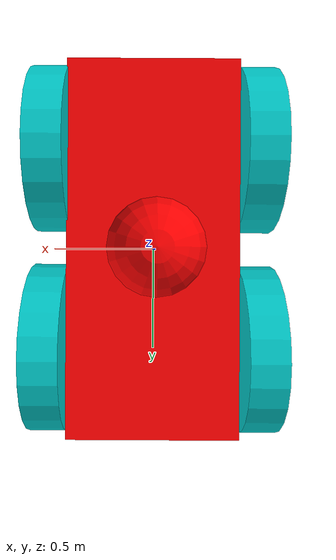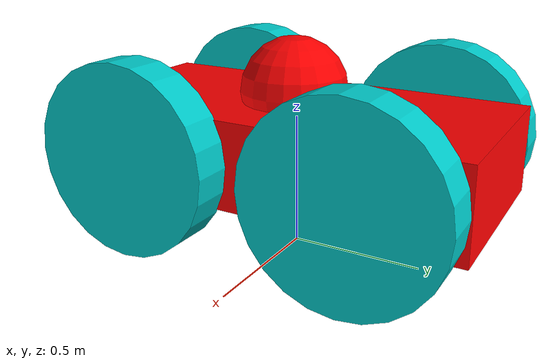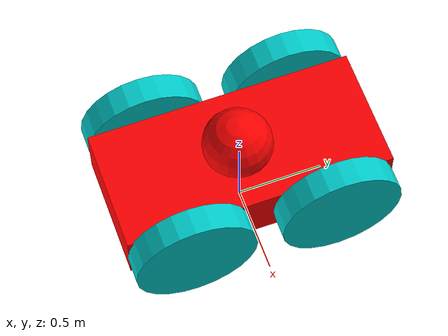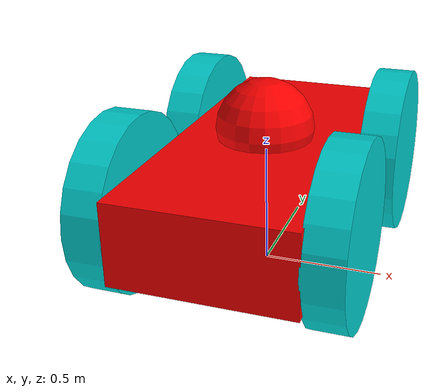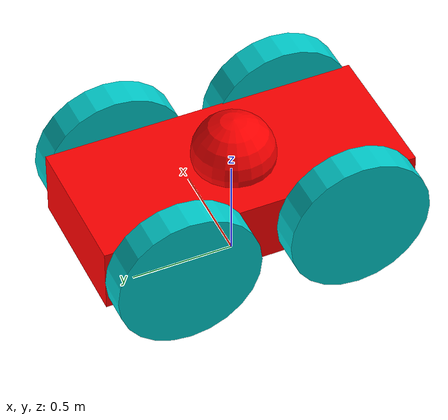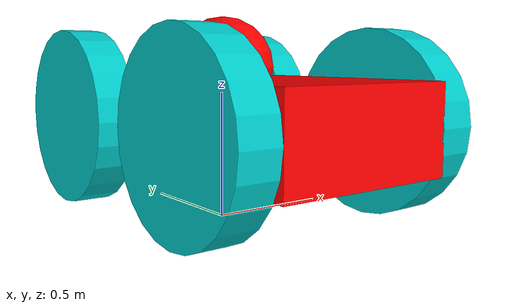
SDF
<?xml version='1.0'?>
<sdf version='1.6'>
  <model name='4wheeler'>
    <link name='link_0'>
      <inertial>
        <mass>1.35085</mass>
        <inertia>
          <ixx>0.277852</ixx>
          <ixy>0</ixy>
          <ixz>0</ixz>
          <iyy>0.0669791</iyy>
          <iyz>0</iyz>
          <izz>0.321192</izz>
        </inertia>
        <pose frame=''>0 0 0 0 -0 0</pose>
      </inertial>
      <pose frame=''>0.011609 -0.00021 0.4 0 -0 0</pose>
      <gravity>1</gravity>
      <self_collide>0</self_collide>
      <kinematic>0</kinematic>
      <enable_wind>0</enable_wind>
      <visual name='visual'>
        <pose frame=''>0 0 0 0 -0 0</pose>
        <geometry>
          <box>
            <size>0.7 1.53729 0.324029</size>
          </box>
        </geometry>
        <material>
          <lighting>1</lighting>
          <script>
            <uri>file://media/materials/scripts/gazebo.material</uri>
            <name>Gazebo/Grey</name>
          </script>
          <shader type='pixel'>
            <normal_map>__default__</normal_map>
          </shader>
          <ambient>1 0 0 1</ambient>
          <diffuse>0.7 0.7 0.7 1</diffuse>
          <specular>0.01 0.01 0.01 1</specular>
          <emissive>0 0 0 1</emissive>
        </material>
        <transparency>0</transparency>
        <cast_shadows>1</cast_shadows>
      </visual>
      <collision name='collision'>
        <laser_retro>0</laser_retro>
        <max_contacts>10</max_contacts>
        <pose frame=''>0 0 0 0 -0 0</pose>
        <geometry>
          <box>
            <size>0.7 1.53729 0.324029</size>
          </box>
        </geometry>
        <surface>
          <friction>
            <ode>
              <mu>1</mu>
              <mu2>1</mu2>
              <fdir1>0 0 0</fdir1>
              <slip1>0</slip1>
              <slip2>0</slip2>
            </ode>
            <torsional>
              <coefficient>1</coefficient>
              <patch_radius>0</patch_radius>
              <surface_radius>0</surface_radius>
              <use_patch_radius>1</use_patch_radius>
              <ode>
                <slip>0</slip>
              </ode>
            </torsional>
          </friction>
          <bounce>
            <restitution_coefficient>0</restitution_coefficient>
            <threshold>1e+06</threshold>
          </bounce>
          <contact>
            <collide_without_contact>0</collide_without_contact>
            <collide_without_contact_bitmask>1</collide_without_contact_bitmask>
            <collide_bitmask>1</collide_bitmask>
            <ode>
              <soft_cfm>0</soft_cfm>
              <soft_erp>0.2</soft_erp>
              <kp>1e+13</kp>
              <kd>1</kd>
              <max_vel>0.01</max_vel>
              <min_depth>0</min_depth>
            </ode>
            <bullet>
              <split_impulse>1</split_impulse>
              <split_impulse_penetration_threshold>-0.01</split_impulse_penetration_threshold>
              <soft_cfm>0</soft_cfm>
              <soft_erp>0.2</soft_erp>
              <kp>1e+13</kp>
              <kd>1</kd>
            </bullet>
          </contact>
        </surface>
      </collision>
    </link>
    <link name='link_1_clone'>
      <inertial>
        <mass>1</mass>
        <inertia>
          <ixx>0.145833</ixx>
          <ixy>0</ixy>
          <ixz>0</ixz>
          <iyy>0.145833</iyy>
          <iyz>0</iyz>
          <izz>0.125</izz>
        </inertia>
        <pose frame=''>0 0 0 0 -0 0</pose>
      </inertial>
      <pose frame=''>0.44037 0.416058 0.4 1.5707 0 1.5707</pose>
      <gravity>1</gravity>
      <self_collide>0</self_collide>
      <kinematic>0</kinematic>
      <enable_wind>0</enable_wind>
      <visual name='visual'>
        <pose frame=''>0 0 0 0 -0 0</pose>
        <geometry>
          <cylinder>
            <radius>0.35</radius>
            <length>0.15</length>
          </cylinder>
        </geometry>
        <material>
          <lighting>1</lighting>
          <script>
            <uri>file://media/materials/scripts/gazebo.material</uri>
            <name>Gazebo/Grey</name>
          </script>
          <shader type='pixel'>
            <normal_map>__default__</normal_map>
          </shader>
          <ambient>0 0.8 0.8 1</ambient>
          <diffuse>0.7 0.7 0.7 1</diffuse>
          <specular>0.01 0.01 0.01 1</specular>
          <emissive>0 0 0 1</emissive>
        </material>
        <transparency>0</transparency>
        <cast_shadows>1</cast_shadows>
      </visual>
      <collision name='collision'>
        <laser_retro>0</laser_retro>
        <max_contacts>10</max_contacts>
        <pose frame=''>0 0 0 0 -0 0</pose>
        <geometry>
          <cylinder>
            <radius>0.35</radius>
            <length>0.15</length>
          </cylinder>
        </geometry>
        <surface>
          <friction>
            <ode>
              <mu>1</mu>
              <mu2>1</mu2>
              <fdir1>0 0 0</fdir1>
              <slip1>0</slip1>
              <slip2>0</slip2>
            </ode>
            <torsional>
              <coefficient>1</coefficient>
              <patch_radius>0</patch_radius>
              <surface_radius>0</surface_radius>
              <use_patch_radius>1</use_patch_radius>
              <ode>
                <slip>0</slip>
              </ode>
            </torsional>
          </friction>
          <bounce>
            <restitution_coefficient>0</restitution_coefficient>
            <threshold>1e+06</threshold>
          </bounce>
          <contact>
            <collide_without_contact>0</collide_without_contact>
            <collide_without_contact_bitmask>1</collide_without_contact_bitmask>
            <collide_bitmask>1</collide_bitmask>
            <ode>
              <soft_cfm>0</soft_cfm>
              <soft_erp>0.2</soft_erp>
              <kp>1e+13</kp>
              <kd>1</kd>
              <max_vel>0.01</max_vel>
              <min_depth>0</min_depth>
            </ode>
            <bullet>
              <split_impulse>1</split_impulse>
              <split_impulse_penetration_threshold>-0.01</split_impulse_penetration_threshold>
              <soft_cfm>0</soft_cfm>
              <soft_erp>0.2</soft_erp>
              <kp>1e+13</kp>
              <kd>1</kd>
            </bullet>
          </contact>
        </surface>
      </collision>
    </link>
    <link name='link_1_clone_clone'>
      <inertial>
        <mass>1</mass>
        <inertia>
          <ixx>0.145833</ixx>
          <ixy>0</ixy>
          <ixz>0</ixz>
          <iyy>0.145833</iyy>
          <iyz>0</iyz>
          <izz>0.125</izz>
        </inertia>
        <pose frame=''>0 0 0 0 -0 0</pose>
      </inertial>
      <pose frame=''>0.431165 -0.424592 0.4 1.5707 0 1.5707</pose>
      <gravity>1</gravity>
      <self_collide>0</self_collide>
      <kinematic>0</kinematic>
      <enable_wind>0</enable_wind>
      <visual name='visual'>
        <pose frame=''>0 0 0 0 -0 0</pose>
        <geometry>
          <cylinder>
            <radius>0.35</radius>
            <length>0.15</length>
          </cylinder>
        </geometry>
        <material>
          <lighting>1</lighting>
          <script>
            <uri>file://media/materials/scripts/gazebo.material</uri>
            <name>Gazebo/Grey</name>
          </script>
          <shader type='pixel'>
            <normal_map>__default__</normal_map>
          </shader>
          <ambient>0 0.8 0.8 1</ambient>
          <diffuse>0.7 0.7 0.7 1</diffuse>
          <specular>0.01 0.01 0.01 1</specular>
          <emissive>0 0 0 1</emissive>
        </material>
        <transparency>0</transparency>
        <cast_shadows>1</cast_shadows>
      </visual>
      <collision name='collision'>
        <laser_retro>0</laser_retro>
        <max_contacts>10</max_contacts>
        <pose frame=''>0 0 0 0 -0 0</pose>
        <geometry>
          <cylinder>
            <radius>0.35</radius>
            <length>0.15</length>
          </cylinder>
        </geometry>
        <surface>
          <friction>
            <ode>
              <mu>1</mu>
              <mu2>1</mu2>
              <fdir1>0 0 0</fdir1>
              <slip1>0</slip1>
              <slip2>0</slip2>
            </ode>
            <torsional>
              <coefficient>1</coefficient>
              <patch_radius>0</patch_radius>
              <surface_radius>0</surface_radius>
              <use_patch_radius>1</use_patch_radius>
              <ode>
                <slip>0</slip>
              </ode>
            </torsional>
          </friction>
          <bounce>
            <restitution_coefficient>0</restitution_coefficient>
            <threshold>1e+06</threshold>
          </bounce>
          <contact>
            <collide_without_contact>0</collide_without_contact>
            <collide_without_contact_bitmask>1</collide_without_contact_bitmask>
            <collide_bitmask>1</collide_bitmask>
            <ode>
              <soft_cfm>0</soft_cfm>
              <soft_erp>0.2</soft_erp>
              <kp>1e+13</kp>
              <kd>1</kd>
              <max_vel>0.01</max_vel>
              <min_depth>0</min_depth>
            </ode>
            <bullet>
              <split_impulse>1</split_impulse>
              <split_impulse_penetration_threshold>-0.01</split_impulse_penetration_threshold>
              <soft_cfm>0</soft_cfm>
              <soft_erp>0.2</soft_erp>
              <kp>1e+13</kp>
              <kd>1</kd>
            </bullet>
          </contact>
        </surface>
      </collision>
    </link>
    <link name='link_1_clone_clone_0'>
      <inertial>
        <mass>1</mass>
        <inertia>
          <ixx>0.145833</ixx>
          <ixy>0</ixy>
          <ixz>0</ixz>
          <iyy>0.145833</iyy>
          <iyz>0</iyz>
          <izz>0.125</izz>
        </inertia>
        <pose frame=''>0 0 0 0 -0 0</pose>
      </inertial>
      <pose frame=''>-0.421453 0.42237 0.4 1.5707 0 1.5707</pose>
      <gravity>1</gravity>
      <self_collide>0</self_collide>
      <kinematic>0</kinematic>
      <enable_wind>0</enable_wind>
      <visual name='visual'>
        <pose frame=''>0 0 0 0 -0 0</pose>
        <geometry>
          <cylinder>
            <radius>0.35</radius>
            <length>0.15</length>
          </cylinder>
        </geometry>
        <material>
          <lighting>1</lighting>
          <script>
            <uri>file://media/materials/scripts/gazebo.material</uri>
            <name>Gazebo/Grey</name>
          </script>
          <shader type='pixel'>
            <normal_map>__default__</normal_map>
          </shader>
          <ambient>0 0.8 0.8 1</ambient>
          <diffuse>0.7 0.7 0.7 1</diffuse>
          <specular>0.01 0.01 0.01 1</specular>
          <emissive>0 0 0 1</emissive>
        </material>
        <transparency>0</transparency>
        <cast_shadows>1</cast_shadows>
      </visual>
      <collision name='collision'>
        <laser_retro>0</laser_retro>
        <max_contacts>10</max_contacts>
        <pose frame=''>0 0 0 0 -0 0</pose>
        <geometry>
          <cylinder>
            <radius>0.35</radius>
            <length>0.15</length>
          </cylinder>
        </geometry>
        <surface>
          <friction>
            <ode>
              <mu>1</mu>
              <mu2>1</mu2>
              <fdir1>0 0 0</fdir1>
              <slip1>0</slip1>
              <slip2>0</slip2>
            </ode>
            <torsional>
              <coefficient>1</coefficient>
              <patch_radius>0</patch_radius>
              <surface_radius>0</surface_radius>
              <use_patch_radius>1</use_patch_radius>
              <ode>
                <slip>0</slip>
              </ode>
            </torsional>
          </friction>
          <bounce>
            <restitution_coefficient>0</restitution_coefficient>
            <threshold>1e+06</threshold>
          </bounce>
          <contact>
            <collide_without_contact>0</collide_without_contact>
            <collide_without_contact_bitmask>1</collide_without_contact_bitmask>
            <collide_bitmask>1</collide_bitmask>
            <ode>
              <soft_cfm>0</soft_cfm>
              <soft_erp>0.2</soft_erp>
              <kp>1e+13</kp>
              <kd>1</kd>
              <max_vel>0.01</max_vel>
              <min_depth>0</min_depth>
            </ode>
            <bullet>
              <split_impulse>1</split_impulse>
              <split_impulse_penetration_threshold>-0.01</split_impulse_penetration_threshold>
              <soft_cfm>0</soft_cfm>
              <soft_erp>0.2</soft_erp>
              <kp>1e+13</kp>
              <kd>1</kd>
            </bullet>
          </contact>
        </surface>
      </collision>
    </link>
    <link name='link_1_clone_clone_clone'>
      <inertial>
        <mass>1</mass>
        <inertia>
          <ixx>0.145833</ixx>
          <ixy>0</ixy>
          <ixz>0</ixz>
          <iyy>0.145833</iyy>
          <iyz>0</iyz>
          <izz>0.125</izz>
        </inertia>
        <pose frame=''>0 0 0 0 -0 0</pose>
      </inertial>
      <pose frame=''>-0.415948 -0.421035 0.4 1.5707 0 1.5707</pose>
      <gravity>1</gravity>
      <self_collide>0</self_collide>
      <kinematic>0</kinematic>
      <enable_wind>0</enable_wind>
      <visual name='visual'>
        <pose frame=''>0 0 0 0 -0 0</pose>
        <geometry>
          <cylinder>
            <radius>0.35</radius>
            <length>0.15</length>
          </cylinder>
        </geometry>
        <material>
          <lighting>1</lighting>
          <script>
            <uri>file://media/materials/scripts/gazebo.material</uri>
            <name>Gazebo/Grey</name>
          </script>
          <shader type='pixel'>
            <normal_map>__default__</normal_map>
          </shader>
          <ambient>0 0.8 0.8 1</ambient>
          <diffuse>0.7 0.7 0.7 1</diffuse>
          <specular>0.01 0.01 0.01 1</specular>
          <emissive>0 0 0 1</emissive>
        </material>
        <transparency>0</transparency>
        <cast_shadows>1</cast_shadows>
      </visual>
      <collision name='collision'>
        <laser_retro>0</laser_retro>
        <max_contacts>10</max_contacts>
        <pose frame=''>0 0 0 0 -0 0</pose>
        <geometry>
          <cylinder>
            <radius>0.35</radius>
            <length>0.15</length>
          </cylinder>
        </geometry>
        <surface>
          <friction>
            <ode>
              <mu>1</mu>
              <mu2>1</mu2>
              <fdir1>0 0 0</fdir1>
              <slip1>0</slip1>
              <slip2>0</slip2>
            </ode>
            <torsional>
              <coefficient>1</coefficient>
              <patch_radius>0</patch_radius>
              <surface_radius>0</surface_radius>
              <use_patch_radius>1</use_patch_radius>
              <ode>
                <slip>0</slip>
              </ode>
            </torsional>
          </friction>
          <bounce>
            <restitution_coefficient>0</restitution_coefficient>
            <threshold>1e+06</threshold>
          </bounce>
          <contact>
            <collide_without_contact>0</collide_without_contact>
            <collide_without_contact_bitmask>1</collide_without_contact_bitmask>
            <collide_bitmask>1</collide_bitmask>
            <ode>
              <soft_cfm>0</soft_cfm>
              <soft_erp>0.2</soft_erp>
              <kp>1e+13</kp>
              <kd>1</kd>
              <max_vel>0.01</max_vel>
              <min_depth>0</min_depth>
            </ode>
            <bullet>
              <split_impulse>1</split_impulse>
              <split_impulse_penetration_threshold>-0.01</split_impulse_penetration_threshold>
              <soft_cfm>0</soft_cfm>
              <soft_erp>0.2</soft_erp>
              <kp>1e+13</kp>
              <kd>1</kd>
            </bullet>
          </contact>
        </surface>
      </collision>
    </link>
    <link name='link_5'>
      <inertial>
        <mass>1</mass>
        <inertia>
          <ixx>0.1</ixx>
          <ixy>0</ixy>
          <ixz>0</ixz>
          <iyy>0.1</iyy>
          <iyz>0</iyz>
          <izz>0.1</izz>
        </inertia>
        <pose frame=''>0 0 0 0 -0 0</pose>
      </inertial>
      <pose frame=''>-0.001788 -0.009431 0.6 0 -0 0</pose>
      <gravity>1</gravity>
      <self_collide>0</self_collide>
      <kinematic>0</kinematic>
      <enable_wind>0</enable_wind>
      <visual name='visual'>
        <pose frame=''>0 0 0 0 -0 0</pose>
        <geometry>
          <sphere>
            <radius>0.2</radius>
          </sphere>
        </geometry>
        <material>
          <lighting>1</lighting>
          <script>
            <uri>file://media/materials/scripts/gazebo.material</uri>
            <name>Gazebo/Grey</name>
          </script>
          <shader type='pixel'>
            <normal_map>__default__</normal_map>
          </shader>
          <ambient>1 0 0 1</ambient>
          <diffuse>0.7 0.7 0.7 1</diffuse>
          <specular>0.01 0.01 0.01 1</specular>
          <emissive>0 0 0 1</emissive>
        </material>
        <transparency>0</transparency>
        <cast_shadows>1</cast_shadows>
      </visual>
      <collision name='collision'>
        <laser_retro>0</laser_retro>
        <max_contacts>10</max_contacts>
        <pose frame=''>0 0 0 0 -0 0</pose>
        <geometry>
          <sphere>
            <radius>0.2</radius>
          </sphere>
        </geometry>
        <surface>
          <friction>
            <ode>
              <mu>1</mu>
              <mu2>1</mu2>
              <fdir1>0 0 0</fdir1>
              <slip1>0</slip1>
              <slip2>0</slip2>
            </ode>
            <torsional>
              <coefficient>1</coefficient>
              <patch_radius>0</patch_radius>
              <surface_radius>0</surface_radius>
              <use_patch_radius>1</use_patch_radius>
              <ode>
                <slip>0</slip>
              </ode>
            </torsional>
          </friction>
          <bounce>
            <restitution_coefficient>0</restitution_coefficient>
            <threshold>1e+06</threshold>
          </bounce>
          <contact>
            <collide_without_contact>0</collide_without_contact>
            <collide_without_contact_bitmask>1</collide_without_contact_bitmask>
            <collide_bitmask>1</collide_bitmask>
            <ode>
              <soft_cfm>0</soft_cfm>
              <soft_erp>0.2</soft_erp>
              <kp>1e+13</kp>
              <kd>1</kd>
              <max_vel>0.01</max_vel>
              <min_depth>0</min_depth>
            </ode>
            <bullet>
              <split_impulse>1</split_impulse>
              <split_impulse_penetration_threshold>-0.01</split_impulse_penetration_threshold>
              <soft_cfm>0</soft_cfm>
              <soft_erp>0.2</soft_erp>
              <kp>1e+13</kp>
              <kd>1</kd>
            </bullet>
          </contact>
        </surface>
      </collision>
    </link>
    <joint name='link_0_JOINT_0' type='revolute'>
      <parent>link_0</parent>
      <child>link_1_clone</child>
      <pose frame=''>0 0 0 0 -0 0</pose>
      <axis>
        <xyz>0 0 1</xyz>
        <use_parent_model_frame>0</use_parent_model_frame>
        <limit>
          <lower>-1.79769e+308</lower>
          <upper>1.79769e+308</upper>
          <effort>-1</effort>
          <velocity>-1</velocity>
        </limit>
        <dynamics>
          <spring_reference>0</spring_reference>
          <spring_stiffness>0</spring_stiffness>
          <damping>0</damping>
          <friction>0</friction>
        </dynamics>
      </axis>
      <physics>
        <ode>
          <limit>
            <cfm>0</cfm>
            <erp>0.2</erp>
          </limit>
          <suspension>
            <cfm>0</cfm>
            <erp>0.2</erp>
          </suspension>
        </ode>
      </physics>
    </joint>
    <joint name='link_0_JOINT_1' type='revolute'>
      <parent>link_0</parent>
      <child>link_1_clone_clone</child>
      <pose frame=''>0 0 0 0 -0 0</pose>
      <axis>
        <xyz>0 0 1</xyz>
        <use_parent_model_frame>0</use_parent_model_frame>
        <limit>
          <lower>-1.79769e+308</lower>
          <upper>1.79769e+308</upper>
          <effort>-1</effort>
          <velocity>-1</velocity>
        </limit>
        <dynamics>
          <spring_reference>0</spring_reference>
          <spring_stiffness>0</spring_stiffness>
          <damping>0</damping>
          <friction>0</friction>
        </dynamics>
      </axis>
      <physics>
        <ode>
          <limit>
            <cfm>0</cfm>
            <erp>0.2</erp>
          </limit>
          <suspension>
            <cfm>0</cfm>
            <erp>0.2</erp>
          </suspension>
        </ode>
      </physics>
    </joint>
    <joint name='link_0_JOINT_2' type='revolute'>
      <parent>link_0</parent>
      <child>link_1_clone_clone_clone</child>
      <pose frame=''>0 0 0 0 -0 0</pose>
      <axis>
        <xyz>0 0 1</xyz>
        <use_parent_model_frame>0</use_parent_model_frame>
        <limit>
          <lower>-1.79769e+308</lower>
          <upper>1.79769e+308</upper>
          <effort>-1</effort>
          <velocity>-1</velocity>
        </limit>
        <dynamics>
          <spring_reference>0</spring_reference>
          <spring_stiffness>0</spring_stiffness>
          <damping>0</damping>
          <friction>0</friction>
        </dynamics>
      </axis>
      <physics>
        <ode>
          <limit>
            <cfm>0</cfm>
            <erp>0.2</erp>
          </limit>
          <suspension>
            <cfm>0</cfm>
            <erp>0.2</erp>
          </suspension>
        </ode>
      </physics>
    </joint>
    <joint name='link_0_JOINT_3' type='revolute'>
      <parent>link_0</parent>
      <child>link_1_clone_clone_0</child>
      <pose frame=''>0 0 0 0 -0 0</pose>
      <axis>
        <xyz>1 0 0</xyz>
        <use_parent_model_frame>0</use_parent_model_frame>
        <limit>
          <lower>-1.79769e+308</lower>
          <upper>1.79769e+308</upper>
          <effort>-1</effort>
          <velocity>-1</velocity>
        </limit>
        <dynamics>
          <spring_reference>0</spring_reference>
          <spring_stiffness>0</spring_stiffness>
          <damping>0</damping>
          <friction>0</friction>
        </dynamics>
      </axis>
      <physics>
        <ode>
          <limit>
            <cfm>0</cfm>
            <erp>0.2</erp>
          </limit>
          <suspension>
            <cfm>0</cfm>
            <erp>0.2</erp>
          </suspension>
        </ode>
      </physics>
    </joint>
    <joint name='link_0_JOINT_4' type='fixed'>
      <parent>link_0</parent>
      <child>link_5</child>
      <pose frame=''>0 0 0 0 -0 0</pose>
      <physics>
        <ode>
          <limit>
            <cfm>0</cfm>
            <erp>0.2</erp>
          </limit>
          <suspension>
            <cfm>0</cfm>
            <erp>0.2</erp>
          </suspension>
        </ode>
      </physics>
    </joint>
    <static>0</static>
    <allow_auto_disable>1</allow_auto_disable>
  </model>
</sdf>
